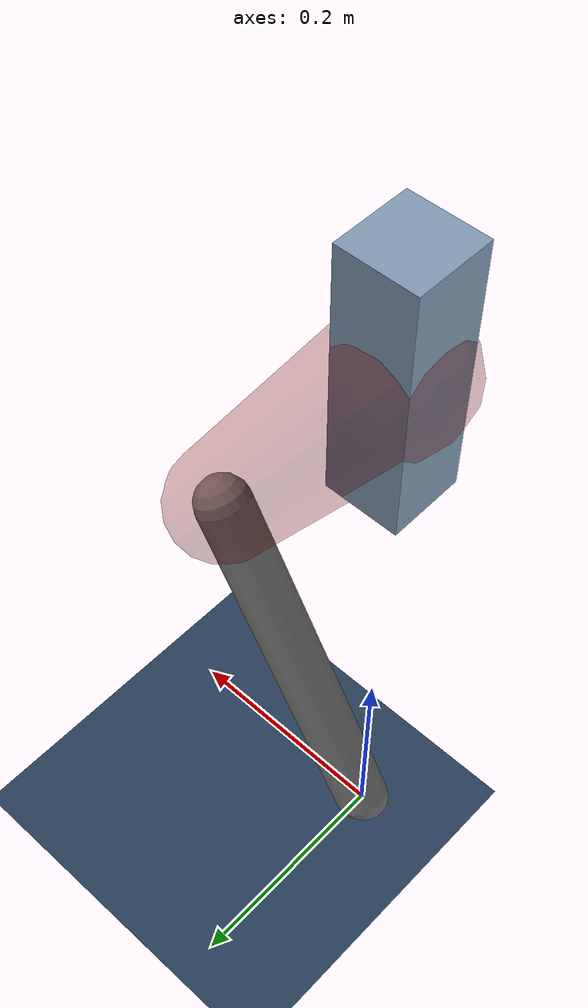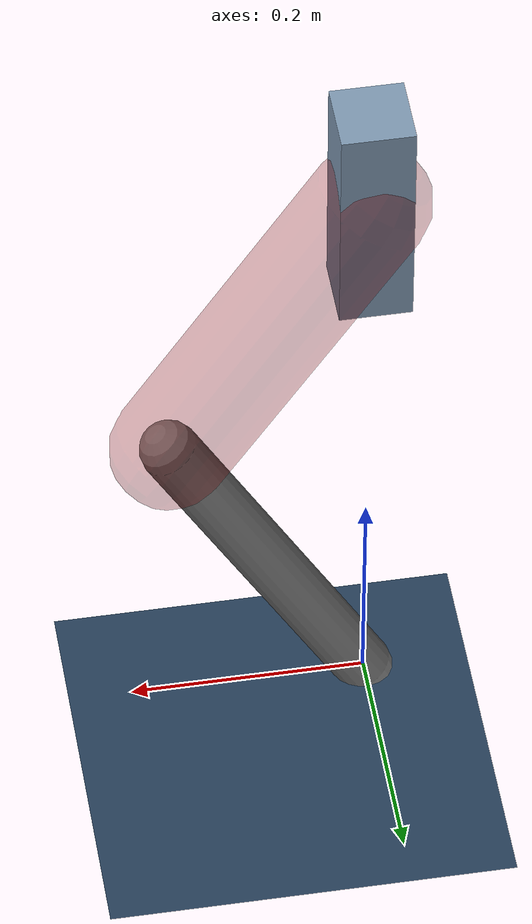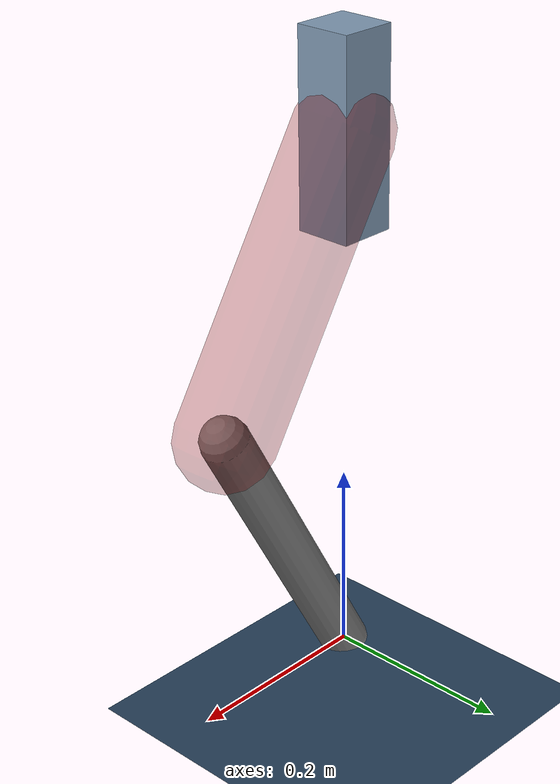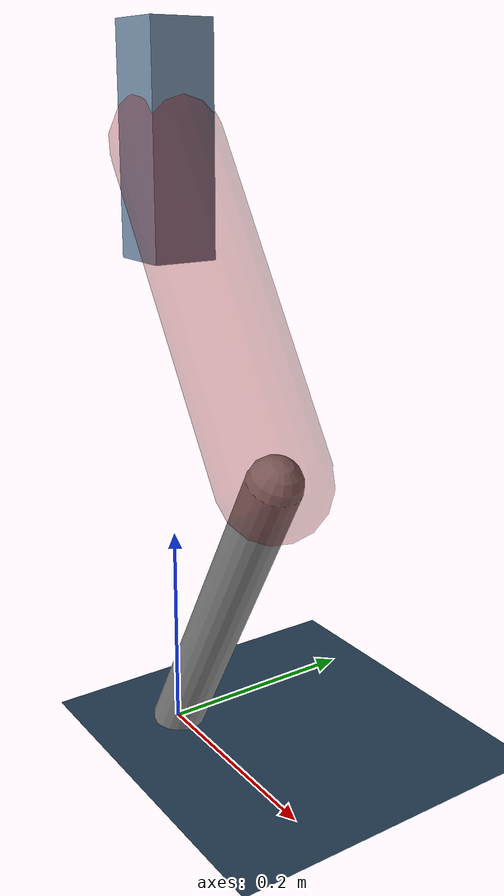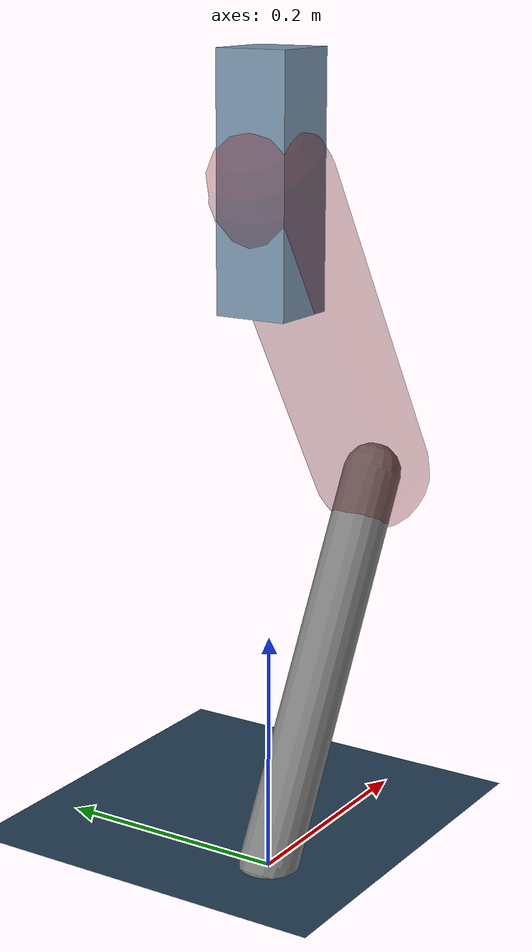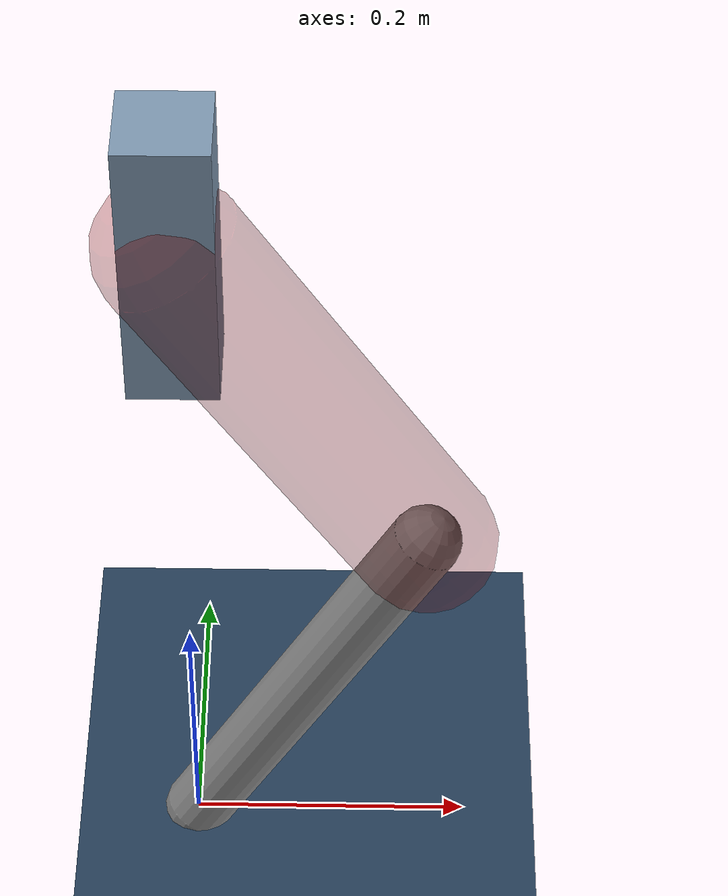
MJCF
<mujoco model="Hopper2D">
	<compiler inertiafromgeom="true" angle="radian" />
	<option timestep="0.001" integrator="implicit" cone="elliptic" solver="Newton" tolerance="1e-10" />

	<default>
		<geom contype="1" conaffinity="1" condim="3" friction="2 0.005 0.0001" solref="0.005 1" />
		<joint limited="true" damping="0.1" />
	</default>

	<asset>
		<texture name="skybox" type="skybox" builtin="gradient" rgb1=".4 .6 .8" rgb2="0 0 0" width="800" height="800" />
		<texture name="grid" type="2d" builtin="checker" rgb1=".1 .2 .3" rgb2=".2 .3 .4" width="300" height="300" mark="edge" markrgb=".2 .3 .4" />
		<material name="ground" texture="grid" texrepeat="1 1" texuniform="true" reflectance="0.1" />
		<material name="leg" rgba="0.5 0.6 0.7 1" />
	</asset>

	<worldbody>

		<geom name="floor" type="plane" size="5 5 0.25" material="ground" />

		<light directional="false" diffuse="0.8 0.8 0.8" specular="0.3 0.3 0.3" pos="0 0 2" dir="0 0 -1" />
		<light mode="targetbodycom" target="base" directional="false" diffuse="0.8 0.8 0.8" specular="0.3 0.3 0.3" pos="0 0 2" dir="0 0 -1" />

		<camera name="fixed" pos="0 -2 1" xyaxes="1 0 0 0 0 1" />
		<camera name="tracking" mode="trackcom" pos="0 -3 1" />

		<body name="root" pos="0 0 0.5646286139946846">
			<joint name="slide_x" type="slide" axis="1 0 0" range="-100 100" />
			<joint name="slide_z" type="slide" axis="0 0 1" range="0 10" />

			<body name="base" pos="0 0 0">
				<geom name="torso" type="box" size="0.03 0.03 0.1" mass="2.614" material="leg" />

				<body name="link1" pos="0 0 0" euler="0 1.0117936877904576 0">
					<joint type="hinge" axis="0 -1 0" pos="0 0 0" name="hinge1" limited="true" range="-3.14 3.14" stiffness="0" damping="0.1" />
					<geom name="thigh" type="capsule" fromto="0 0 0 0.3105489573818469 0 0" size="0.05" rgba="0.5 0 0 0.3" mass="1.0173821849309865" />

					<body name="link2" pos="0.3105489573818469 0 0" euler="0 1.05917780486047 0">
						<joint type="hinge" axis="0 -1 0" pos="0 0 0" name="hinge2" limited="true" range="-3.14 3.14" stiffness="0" damping="0.1" />
						<geom name="shank" type="capsule" fromto="0 0 0 0.3434193969385632 0 0" size="0.025" mass="0.5186355175508506" />

					</body>
				</body>
			</body>
		</body>
	</worldbody>

	<actuator>
		<motor name="torque1" joint="hinge1" ctrlrange="-86.09980106339879 86.09980106339879" ctrllimited="true" gear="1" />
		<motor name="torque2" joint="hinge2" ctrlrange="-55.29755374639821 55.29755374639821" ctrllimited="true" gear="1" />
	</actuator>
</mujoco>
